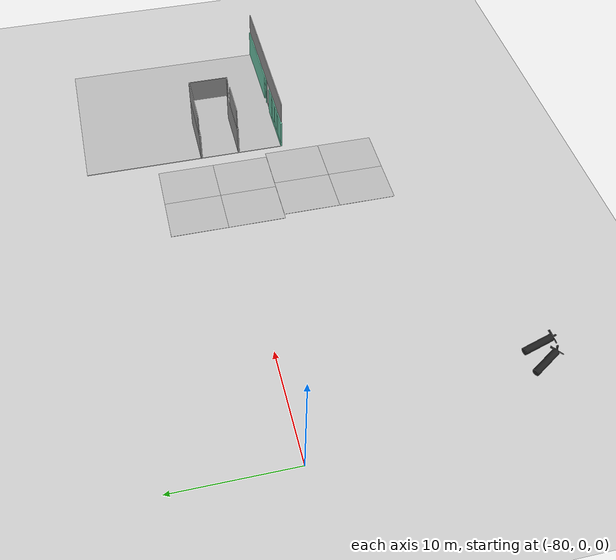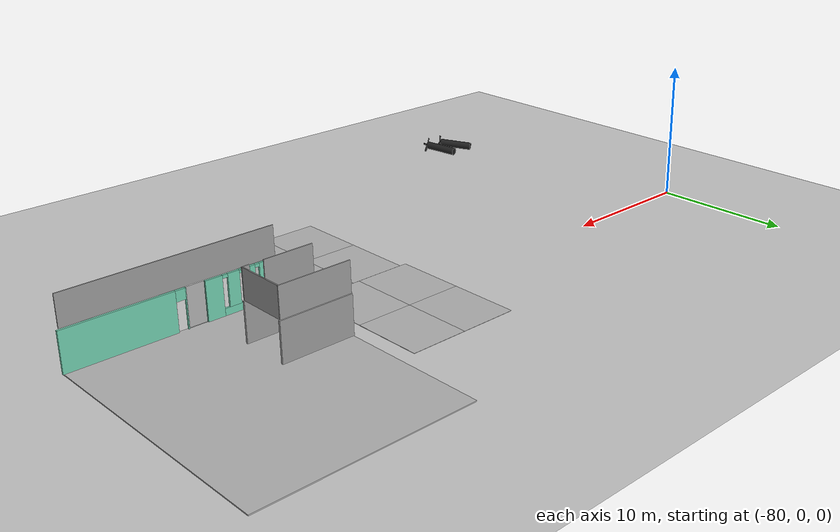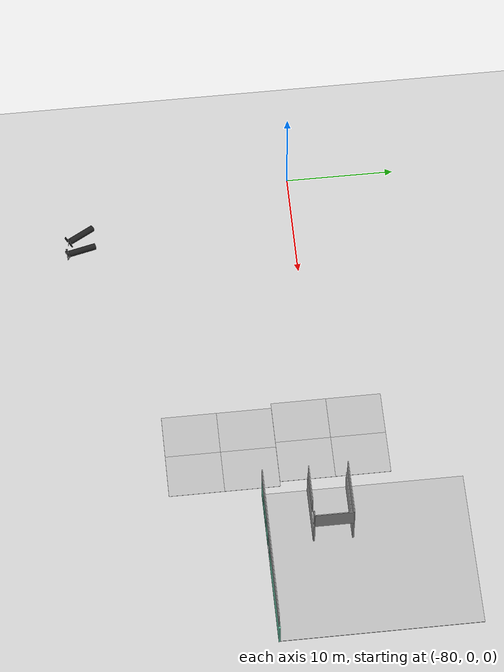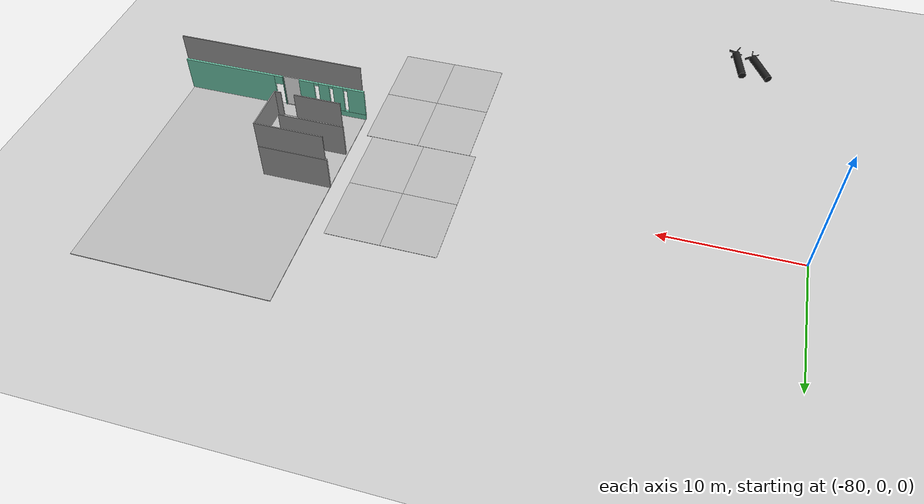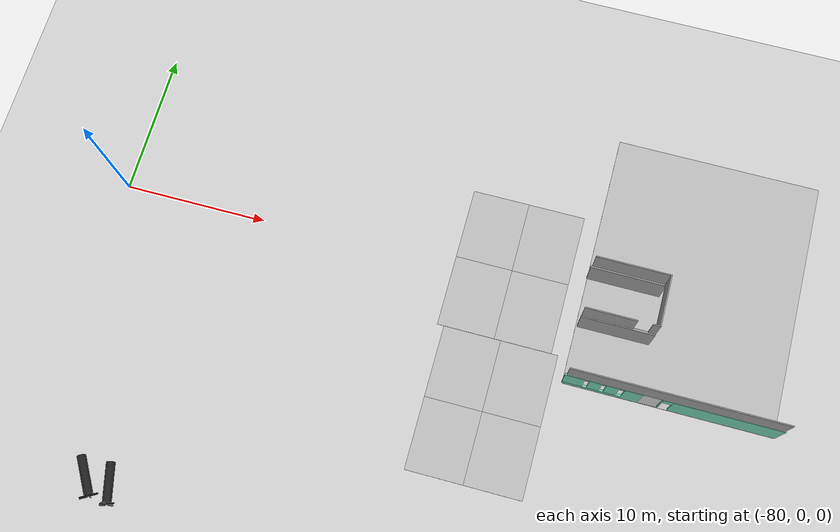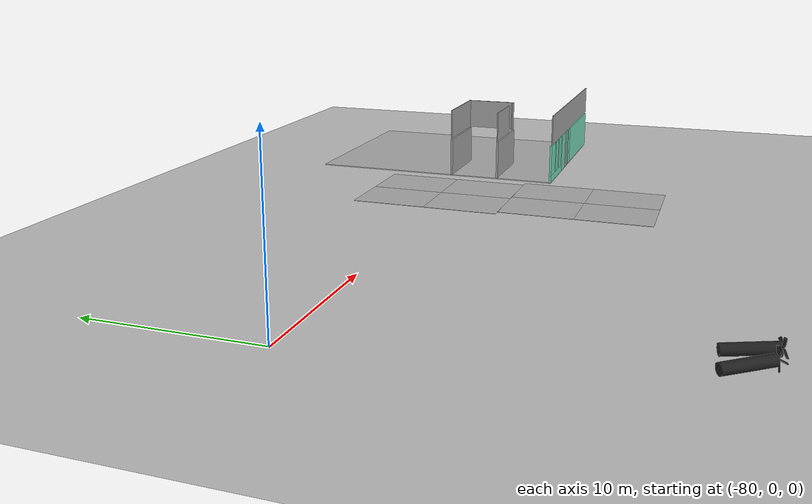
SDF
<sdf version="1.7">
 <world name="default">
  <model name="ground_plane">
   <static>1</static>
   <link name="link">
    <collision name="collision">
     <geometry><plane><normal>0 0 1</normal><size>100 100</size></plane></geometry>
     <surface><friction><ode><mu>100</mu><mu2>50</mu2></ode></friction></surface>
    </collision>
    <visual name="visual">
     <cast_shadows>0</cast_shadows>
     <geometry><plane><normal>0 0 1</normal><size>100 100</size></plane></geometry>
     <material>
      <script><uri>file://media/materials/scripts/gazebo.material</uri><name>Gazebo/Grey</name></script>
     </material>
    </visual>
   </link>
  </model>
  <model name="233333osrf_elevator">
   <link name="Wall_16">
    <pose>-4.68247 -1.4425 0 0 -0 0</pose>
    <visual name="Wall_16_Visual">
     <meta><layer>0</layer></meta>
     <pose>0 0 1.3715 0 -0 0</pose>
     <geometry><box><size>5.12727 0.15 2.743</size></box></geometry>
     <material>
      <script><uri>file://media/materials/scripts/gazebo.material</uri><name>Gazebo/Grey</name></script>
      <ambient>1 1 1 1</ambient>
      <shader type="pixel"/>
     </material>
    </visual>
    <collision name="Wall_16_Collision">
     <pose>0 0 1.3715 0 -0 0</pose>
     <geometry><box><size>5.12727 0.15 2.743</size></box></geometry>
     <surface>
      <friction>
       <ode><mu>1</mu><mu2>1</mu2><fdir1>0 0 0</fdir1><slip1>0</slip1><slip2>0</slip2></ode>
       <torsional>
        <coefficient>1</coefficient>
        <patch_radius>0</patch_radius>
        <surface_radius>0</surface_radius>
        <use_patch_radius>1</use_patch_radius>
        <ode><slip>0</slip></ode>
       </torsional>
      </friction>
      <bounce><restitution_coefficient>0</restitution_coefficient><threshold>1e+06</threshold></bounce>
      <contact>
       <collide_without_contact>0</collide_without_contact>
       <collide_without_contact_bitmask>1</collide_without_contact_bitmask>
       <collide_bitmask>1</collide_bitmask>
       <ode>
        <soft_cfm>0</soft_cfm>
        <soft_erp>0.2</soft_erp>
        <kp>1e+13</kp>
        <kd>1</kd>
        <max_vel>0.01</max_vel>
        <min_depth>0</min_depth>
       </ode>
       <bullet>
        <split_impulse>1</split_impulse>
        <split_impulse_penetration_threshold>-0.01</split_impulse_penetration_threshold>
        <soft_cfm>0</soft_cfm>
        <soft_erp>0.2</soft_erp>
        <kp>1e+13</kp>
        <kd>1</kd>
       </bullet>
      </contact>
     </surface>
    </collision>
   </link>
   <link name="Wall_18">
    <pose>-4.61297 -4.9275 0 0 -0 3.14159</pose>
    <visual name="Wall_18_Visual">
     <meta><layer>0</layer></meta>
     <pose>0 0 1.3715 0 -0 0</pose>
     <geometry><box><size>5 0.15 2.743</size></box></geometry>
     <material>
      <script><uri>file://media/materials/scripts/gazebo.material</uri><name>Gazebo/Grey</name></script>
      <ambient>1 1 1 1</ambient>
      <shader type="pixel"/>
     </material>
    </visual>
    <collision name="Wall_18_Collision">
     <pose>0 0 1.3715 0 -0 0</pose>
     <geometry><box><size>5 0.15 2.743</size></box></geometry>
     <surface>
      <friction>
       <ode><mu>1</mu><mu2>1</mu2><fdir1>0 0 0</fdir1><slip1>0</slip1><slip2>0</slip2></ode>
       <torsional>
        <coefficient>1</coefficient>
        <patch_radius>0</patch_radius>
        <surface_radius>0</surface_radius>
        <use_patch_radius>1</use_patch_radius>
        <ode><slip>0</slip></ode>
       </torsional>
      </friction>
      <bounce><restitution_coefficient>0</restitution_coefficient><threshold>1e+06</threshold></bounce>
      <contact>
       <collide_without_contact>0</collide_without_contact>
       <collide_without_contact_bitmask>1</collide_without_contact_bitmask>
       <collide_bitmask>1</collide_bitmask>
       <ode>
        <soft_cfm>0</soft_cfm>
        <soft_erp>0.2</soft_erp>
        <kp>1e+13</kp>
        <kd>1</kd>
        <max_vel>0.01</max_vel>
        <min_depth>0</min_depth>
       </ode>
       <bullet>
        <split_impulse>1</split_impulse>
        <split_impulse_penetration_threshold>-0.01</split_impulse_penetration_threshold>
        <soft_cfm>0</soft_cfm>
        <soft_erp>0.2</soft_erp>
        <kp>1e+13</kp>
        <kd>1</kd>
       </bullet>
      </contact>
     </surface>
    </collision>
   </link>
   <link name="Wall_6">
    <pose>0.00703 -8.9695 0 0 -0 3.14159</pose>
    <visual name="Wall_6_Visual_0">
     <meta><layer>0</layer></meta>
     <pose>-3.60425 0 1.365 0 -0 0</pose>
     <geometry><box><size>7.2915 0.15 2.73</size></box></geometry>
     <material>
      <script><uri>file://media/materials/scripts/gazebo.material</uri><name>Gazebo/Grey</name></script>
      <ambient>0.435294 0.796078 0.67451 1</ambient>
      <shader type="pixel"/>
     </material>
    </visual>
    <visual name="Wall_6_Visual_1">
     <meta><layer>0</layer></meta>
     <pose>0.726241 0 1.365 0 -0 0</pose>
     <geometry><box><size>0.056893 0.15 2.73</size></box></geometry>
     <material>
      <script><uri>file://media/materials/scripts/gazebo.material</uri><name>Gazebo/Grey</name></script>
      <ambient>0.435294 0.796078 0.67451 1</ambient>
      <shader type="pixel"/>
     </material>
    </visual>
    <visual name="Wall_6_Visual_4">
     <meta><layer>0</layer></meta>
     <pose>5.24871 0 0.25 0 -0 0</pose>
     <geometry><box><size>4.00258 0.15 0.5</size></box></geometry>
     <material>
      <script><uri>file://media/materials/scripts/gazebo.material</uri><name>Gazebo/Grey</name></script>
      <ambient>0.435294 0.796078 0.67451 1</ambient>
      <shader type="pixel"/>
     </material>
    </visual>
    <visual name="Wall_6_Visual_2">
     <meta><layer>0</layer></meta>
     <pose>2.65105 0 1.365 0 -0 0</pose>
     <geometry><box><size>1.19273 0.15 2.73</size></box></geometry>
     <material>
      <script><uri>file://media/materials/scripts/gazebo.material</uri><name>Gazebo/Grey</name></script>
      <ambient>0.435294 0.796078 0.67451 1</ambient>
      <shader type="pixel"/>
     </material>
    </visual>
    <visual name="Wall_6_Visual_5">
     <meta><layer>0</layer></meta>
     <pose>4.0419 0 1.615 0 -0 0</pose>
     <geometry><box><size>0.828969 0.15 2.23</size></box></geometry>
     <material>
      <script><uri>file://media/materials/scripts/gazebo.material</uri><name>Gazebo/Grey</name></script>
      <ambient>0.435294 0.796078 0.67451 1</ambient>
      <shader type="pixel"/>
     </material>
    </visual>
    <visual name="Wall_6_Visual_6">
     <meta><layer>0</layer></meta>
     <pose>5.18099 0 1.615 0 -0 0</pose>
     <geometry><box><size>0.819207 0.15 2.23</size></box></geometry>
     <material>
      <script><uri>file://media/materials/scripts/gazebo.material</uri><name>Gazebo/Grey</name></script>
      <ambient>0.435294 0.796078 0.67451 1</ambient>
      <shader type="pixel"/>
     </material>
    </visual>
    <visual name="Wall_6_Visual_7">
     <meta><layer>0</layer></meta>
     <pose>6.58056 0 1.615 0 -0 0</pose>
     <geometry><box><size>1.33888 0.15 2.23</size></box></geometry>
     <material>
      <script><uri>file://media/materials/scripts/gazebo.material</uri><name>Gazebo/Grey</name></script>
      <ambient>0.435294 0.796078 0.67451 1</ambient>
      <shader type="pixel"/>
     </material>
    </visual>
    <visual name="Wall_6_Visual_8">
     <meta><layer>0</layer></meta>
     <pose>0.369648 0 2.365 0 -0 0</pose>
     <geometry><box><size>0.656294 0.15 0.73</size></box></geometry>
     <material>
      <script><uri>file://media/materials/scripts/gazebo.material</uri><name>Gazebo/Grey</name></script>
      <ambient>0.435294 0.796078 0.67451 1</ambient>
      <shader type="pixel"/>
     </material>
    </visual>
    <visual name="Wall_6_Visual_9">
     <meta><layer>0</layer></meta>
     <pose>3.43742 0 2.615 0 -0 0</pose>
     <geometry><box><size>0.38 0.15 0.23</size></box></geometry>
     <material>
      <script><uri>file://media/materials/scripts/gazebo.material</uri><name>Gazebo/Grey</name></script>
      <ambient>0.435294 0.796078 0.67451 1</ambient>
      <shader type="pixel"/>
     </material>
    </visual>
    <visual name="Wall_6_Visual_10">
     <meta><layer>0</layer></meta>
     <pose>4.61389 0 2.615 0 -0 0</pose>
     <geometry><box><size>0.315 0.15 0.23</size></box></geometry>
     <material>
      <script><uri>file://media/materials/scripts/gazebo.material</uri><name>Gazebo/Grey</name></script>
      <ambient>0.435294 0.796078 0.67451 1</ambient>
      <shader type="pixel"/>
     </material>
    </visual>
    <visual name="Wall_6_Visual_11">
     <meta><layer>0</layer></meta>
     <pose>5.75086 0 2.615 0 -0 0</pose>
     <geometry><box><size>0.320532 0.15 0.23</size></box></geometry>
     <material>
      <script><uri>file://media/materials/scripts/gazebo.material</uri><name>Gazebo/Grey</name></script>
      <ambient>0.435294 0.796078 0.67451 1</ambient>
      <shader type="pixel"/>
     </material>
    </visual>
    <collision name="Wall_6_Collision_0">
     <pose>-3.60425 0 1.365 0 -0 0</pose>
     <geometry><box><size>7.2915 0.15 2.73</size></box></geometry>
     <surface>
      <friction>
       <ode><mu>1</mu><mu2>1</mu2><fdir1>0 0 0</fdir1><slip1>0</slip1><slip2>0</slip2></ode>
       <torsional>
        <coefficient>1</coefficient>
        <patch_radius>0</patch_radius>
        <surface_radius>0</surface_radius>
        <use_patch_radius>1</use_patch_radius>
        <ode><slip>0</slip></ode>
       </torsional>
      </friction>
      <bounce><restitution_coefficient>0</restitution_coefficient><threshold>1e+06</threshold></bounce>
      <contact>
       <collide_without_contact>0</collide_without_contact>
       <collide_without_contact_bitmask>1</collide_without_contact_bitmask>
       <collide_bitmask>1</collide_bitmask>
       <ode>
        <soft_cfm>0</soft_cfm>
        <soft_erp>0.2</soft_erp>
        <kp>1e+13</kp>
        <kd>1</kd>
        <max_vel>0.01</max_vel>
        <min_depth>0</min_depth>
       </ode>
       <bullet>
        <split_impulse>1</split_impulse>
        <split_impulse_penetration_threshold>-0.01</split_impulse_penetration_threshold>
        <soft_cfm>0</soft_cfm>
        <soft_erp>0.2</soft_erp>
        <kp>1e+13</kp>
        <kd>1</kd>
       </bullet>
      </contact>
     </surface>
    </collision>
    <collision name="Wall_6_Collision_1">
     <pose>0.726241 0 1.365 0 -0 0</pose>
     <geometry><box><size>0.056893 0.15 2.73</size></box></geometry>
     <surface>
      <friction>
       <ode><mu>1</mu><mu2>1</mu2><fdir1>0 0 0</fdir1><slip1>0</slip1><slip2>0</slip2></ode>
       <torsional>
        <coefficient>1</coefficient>
        <patch_radius>0</patch_radius>
        <surface_radius>0</surface_radius>
        <use_patch_radius>1</use_patch_radius>
        <ode><slip>0</slip></ode>
       </torsional>
      </friction>
      <bounce><restitution_coefficient>0</restitution_coefficient><threshold>1e+06</threshold></bounce>
      <contact>
       <collide_without_contact>0</collide_without_contact>
       <collide_without_contact_bitmask>1</collide_without_contact_bitmask>
       <collide_bitmask>1</collide_bitmask>
       <ode>
        <soft_cfm>0</soft_cfm>
        <soft_erp>0.2</soft_erp>
        <kp>1e+13</kp>
        <kd>1</kd>
        <max_vel>0.01</max_vel>
        <min_depth>0</min_depth>
       </ode>
       <bullet>
        <split_impulse>1</split_impulse>
        <split_impulse_penetration_threshold>-0.01</split_impulse_penetration_threshold>
        <soft_cfm>0</soft_cfm>
        <soft_erp>0.2</soft_erp>
        <kp>1e+13</kp>
        <kd>1</kd>
       </bullet>
      </contact>
     </surface>
    </collision>
    <collision name="Wall_6_Collision_2">
     <pose>2.65105 0 1.365 0 -0 0</pose>
     <geometry><box><size>1.19273 0.15 2.73</size></box></geometry>
     <surface>
      <friction>
       <ode><mu>1</mu><mu2>1</mu2><fdir1>0 0 0</fdir1><slip1>0</slip1><slip2>0</slip2></ode>
       <torsional>
        <coefficient>1</coefficient>
        <patch_radius>0</patch_radius>
        <surface_radius>0</surface_radius>
        <use_patch_radius>1</use_patch_radius>
        <ode><slip>0</slip></ode>
       </torsional>
      </friction>
      <bounce><restitution_coefficient>0</restitution_coefficient><threshold>1e+06</threshold></bounce>
      <contact>
       <collide_without_contact>0</collide_without_contact>
       <collide_without_contact_bitmask>1</collide_without_contact_bitmask>
       <collide_bitmask>1</collide_bitmask>
       <ode>
        <soft_cfm>0</soft_cfm>
        <soft_erp>0.2</soft_erp>
        <kp>1e+13</kp>
        <kd>1</kd>
        <max_vel>0.01</max_vel>
        <min_depth>0</min_depth>
       </ode>
       <bullet>
        <split_impulse>1</split_impulse>
        <split_impulse_penetration_threshold>-0.01</split_impulse_penetration_threshold>
        <soft_cfm>0</soft_cfm>
        <soft_erp>0.2</soft_erp>
        <kp>1e+13</kp>
        <kd>1</kd>
       </bullet>
      </contact>
     </surface>
    </collision>
    <collision name="Wall_6_Collision_4">
     <pose>5.24871 0 0.25 0 -0 0</pose>
     <geometry><box><size>4.00258 0.15 0.5</size></box></geometry>
     <surface>
      <friction>
       <ode><mu>1</mu><mu2>1</mu2><fdir1>0 0 0</fdir1><slip1>0</slip1><slip2>0</slip2></ode>
       <torsional>
        <coefficient>1</coefficient>
        <patch_radius>0</patch_radius>
        <surface_radius>0</surface_radius>
        <use_patch_radius>1</use_patch_radius>
        <ode><slip>0</slip></ode>
       </torsional>
      </friction>
      <bounce><restitution_coefficient>0</restitution_coefficient><threshold>1e+06</threshold></bounce>
      <contact>
       <collide_without_contact>0</collide_without_contact>
       <collide_without_contact_bitmask>1</collide_without_contact_bitmask>
       <collide_bitmask>1</collide_bitmask>
       <ode>
        <soft_cfm>0</soft_cfm>
        <soft_erp>0.2</soft_erp>
        <kp>1e+13</kp>
        <kd>1</kd>
        <max_vel>0.01</max_vel>
        <min_depth>0</min_depth>
       </ode>
       <bullet>
        <split_impulse>1</split_impulse>
        <split_impulse_penetration_threshold>-0.01</split_impulse_penetration_threshold>
        <soft_cfm>0</soft_cfm>
        <soft_erp>0.2</soft_erp>
        <kp>1e+13</kp>
        <kd>1</kd>
       </bullet>
      </contact>
     </surface>
    </collision>
    <collision name="Wall_6_Collision_5">
     <pose>4.0419 0 1.615 0 -0 0</pose>
     <geometry><box><size>0.828969 0.15 2.23</size></box></geometry>
     <surface>
      <friction>
       <ode><mu>1</mu><mu2>1</mu2><fdir1>0 0 0</fdir1><slip1>0</slip1><slip2>0</slip2></ode>
       <torsional>
        <coefficient>1</coefficient>
        <patch_radius>0</patch_radius>
        <surface_radius>0</surface_radius>
        <use_patch_radius>1</use_patch_radius>
        <ode><slip>0</slip></ode>
       </torsional>
      </friction>
      <bounce><restitution_coefficient>0</restitution_coefficient><threshold>1e+06</threshold></bounce>
      <contact>
       <collide_without_contact>0</collide_without_contact>
       <collide_without_contact_bitmask>1</collide_without_contact_bitmask>
       <collide_bitmask>1</collide_bitmask>
       <ode>
        <soft_cfm>0</soft_cfm>
        <soft_erp>0.2</soft_erp>
        <kp>1e+13</kp>
        <kd>1</kd>
        <max_vel>0.01</max_vel>
        <min_depth>0</min_depth>
       </ode>
       <bullet>
        <split_impulse>1</split_impulse>
        <split_impulse_penetration_threshold>-0.01</split_impulse_penetration_threshold>
        <soft_cfm>0</soft_cfm>
        <soft_erp>0.2</soft_erp>
        <kp>1e+13</kp>
        <kd>1</kd>
       </bullet>
      </contact>
     </surface>
    </collision>
    <collision name="Wall_6_Collision_6">
     <pose>5.18099 0 1.615 0 -0 0</pose>
     <geometry><box><size>0.819207 0.15 2.23</size></box></geometry>
     <surface>
      <friction>
       <ode><mu>1</mu><mu2>1</mu2><fdir1>0 0 0</fdir1><slip1>0</slip1><slip2>0</slip2></ode>
       <torsional>
        <coefficient>1</coefficient>
        <patch_radius>0</patch_radius>
        <surface_radius>0</surface_radius>
        <use_patch_radius>1</use_patch_radius>
        <ode><slip>0</slip></ode>
       </torsional>
      </friction>
      <bounce><restitution_coefficient>0</restitution_coefficient><threshold>1e+06</threshold></bounce>
      <contact>
       <collide_without_contact>0</collide_without_contact>
       <collide_without_contact_bitmask>1</collide_without_contact_bitmask>
       <collide_bitmask>1</collide_bitmask>
       <ode>
        <soft_cfm>0</soft_cfm>
        <soft_erp>0.2</soft_erp>
        <kp>1e+13</kp>
        <kd>1</kd>
        <max_vel>0.01</max_vel>
        <min_depth>0</min_depth>
       </ode>
       <bullet>
        <split_impulse>1</split_impulse>
        <split_impulse_penetration_threshold>-0.01</split_impulse_penetration_threshold>
        <soft_cfm>0</soft_cfm>
        <soft_erp>0.2</soft_erp>
        <kp>1e+13</kp>
        <kd>1</kd>
       </bullet>
      </contact>
     </surface>
    </collision>
    <collision name="Wall_6_Collision_8">
     <pose>0.369648 0 2.365 0 -0 0</pose>
     <geometry><box><size>0.656294 0.15 0.73</size></box></geometry>
     <surface>
      <friction>
       <ode><mu>1</mu><mu2>1</mu2><fdir1>0 0 0</fdir1><slip1>0</slip1><slip2>0</slip2></ode>
       <torsional>
        <coefficient>1</coefficient>
        <patch_radius>0</patch_radius>
        <surface_radius>0</surface_radius>
        <use_patch_radius>1</use_patch_radius>
        <ode><slip>0</slip></ode>
       </torsional>
      </friction>
      <bounce><restitution_coefficient>0</restitution_coefficient><threshold>1e+06</threshold></bounce>
      <contact>
       <collide_without_contact>0</collide_without_contact>
       <collide_without_contact_bitmask>1</collide_without_contact_bitmask>
       <collide_bitmask>1</collide_bitmask>
       <ode>
        <soft_cfm>0</soft_cfm>
        <soft_erp>0.2</soft_erp>
        <kp>1e+13</kp>
        <kd>1</kd>
        <max_vel>0.01</max_vel>
        <min_depth>0</min_depth>
       </ode>
       <bullet>
        <split_impulse>1</split_impulse>
        <split_impulse_penetration_threshold>-0.01</split_impulse_penetration_threshold>
        <soft_cfm>0</soft_cfm>
        <soft_erp>0.2</soft_erp>
        <kp>1e+13</kp>
        <kd>1</kd>
       </bullet>
      </contact>
     </surface>
    </collision>
    <collision name="Wall_6_Collision_7">
     <pose>6.58056 0 1.615 0 -0 0</pose>
     <geometry><box><size>1.33888 0.15 2.23</size></box></geometry>
     <surface>
      <friction>
       <ode><mu>1</mu><mu2>1</mu2><fdir1>0 0 0</fdir1><slip1>0</slip1><slip2>0</slip2></ode>
       <torsional>
        <coefficient>1</coefficient>
        <patch_radius>0</patch_radius>
        <surface_radius>0</surface_radius>
        <use_patch_radius>1</use_patch_radius>
        <ode><slip>0</slip></ode>
       </torsional>
      </friction>
      <bounce><restitution_coefficient>0</restitution_coefficient><threshold>1e+06</threshold></bounce>
      <contact>
       <collide_without_contact>0</collide_without_contact>
       <collide_without_contact_bitmask>1</collide_without_contact_bitmask>
       <collide_bitmask>1</collide_bitmask>
       <ode>
        <soft_cfm>0</soft_cfm>
        <soft_erp>0.2</soft_erp>
        <kp>1e+13</kp>
        <kd>1</kd>
        <max_vel>0.01</max_vel>
        <min_depth>0</min_depth>
       </ode>
       <bullet>
        <split_impulse>1</split_impulse>
        <split_impulse_penetration_threshold>-0.01</split_impulse_penetration_threshold>
        <soft_cfm>0</soft_cfm>
        <soft_erp>0.2</soft_erp>
        <kp>1e+13</kp>
        <kd>1</kd>
       </bullet>
      </contact>
     </surface>
    </collision>
    <collision name="Wall_6_Collision_9">
     <pose>3.43742 0 2.615 0 -0 0</pose>
     <geometry><box><size>0.38 0.15 0.23</size></box></geometry>
     <surface>
      <friction>
       <ode><mu>1</mu><mu2>1</mu2><fdir1>0 0 0</fdir1><slip1>0</slip1><slip2>0</slip2></ode>
       <torsional>
        <coefficient>1</coefficient>
        <patch_radius>0</patch_radius>
        <surface_radius>0</surface_radius>
        <use_patch_radius>1</use_patch_radius>
        <ode><slip>0</slip></ode>
       </torsional>
      </friction>
      <bounce><restitution_coefficient>0</restitution_coefficient><threshold>1e+06</threshold></bounce>
      <contact>
       <collide_without_contact>0</collide_without_contact>
       <collide_without_contact_bitmask>1</collide_without_contact_bitmask>
       <collide_bitmask>1</collide_bitmask>
       <ode>
        <soft_cfm>0</soft_cfm>
        <soft_erp>0.2</soft_erp>
        <kp>1e+13</kp>
        <kd>1</kd>
        <max_vel>0.01</max_vel>
        <min_depth>0</min_depth>
       </ode>
       <bullet>
        <split_impulse>1</split_impulse>
        <split_impulse_penetration_threshold>-0.01</split_impulse_penetration_threshold>
        <soft_cfm>0</soft_cfm>
        <soft_erp>0.2</soft_erp>
        <kp>1e+13</kp>
        <kd>1</kd>
       </bullet>
      </contact>
     </surface>
    </collision>
    <collision name="Wall_6_Collision_10">
     <pose>4.61389 0 2.615 0 -0 0</pose>
     <geometry><box><size>0.315 0.15 0.23</size></box></geometry>
     <surface>
      <friction>
       <ode><mu>1</mu><mu2>1</mu2><fdir1>0 0 0</fdir1><slip1>0</slip1><slip2>0</slip2></ode>
       <torsional>
        <coefficient>1</coefficient>
        <patch_radius>0</patch_radius>
        <surface_radius>0</surface_radius>
        <use_patch_radius>1</use_patch_radius>
        <ode><slip>0</slip></ode>
       </torsional>
      </friction>
      <bounce><restitution_coefficient>0</restitution_coefficient><threshold>1e+06</threshold></bounce>
      <contact>
       <collide_without_contact>0</collide_without_contact>
       <collide_without_contact_bitmask>1</collide_without_contact_bitmask>
       <collide_bitmask>1</collide_bitmask>
       <ode>
        <soft_cfm>0</soft_cfm>
        <soft_erp>0.2</soft_erp>
        <kp>1e+13</kp>
        <kd>1</kd>
        <max_vel>0.01</max_vel>
        <min_depth>0</min_depth>
       </ode>
       <bullet>
        <split_impulse>1</split_impulse>
        <split_impulse_penetration_threshold>-0.01</split_impulse_penetration_threshold>
        <soft_cfm>0</soft_cfm>
        <soft_erp>0.2</soft_erp>
        <kp>1e+13</kp>
        <kd>1</kd>
       </bullet>
      </contact>
     </surface>
    </collision>
    <collision name="Wall_6_Collision_11">
     <pose>5.75086 0 2.615 0 -0 0</pose>
     <geometry><box><size>0.320532 0.15 0.23</size></box></geometry>
     <surface>
      <friction>
       <ode><mu>1</mu><mu2>1</mu2><fdir1>0 0 0</fdir1><slip1>0</slip1><slip2>0</slip2></ode>
       <torsional>
        <coefficient>1</coefficient>
        <patch_radius>0</patch_radius>
        <surface_radius>0</surface_radius>
        <use_patch_radius>1</use_patch_radius>
        <ode><slip>0</slip></ode>
       </torsional>
      </friction>
      <bounce><restitution_coefficient>0</restitution_coefficient><threshold>1e+06</threshold></bounce>
      <contact>
       <collide_without_contact>0</collide_without_contact>
       <collide_without_contact_bitmask>1</collide_without_contact_bitmask>
       <collide_bitmask>1</collide_bitmask>
       <ode>
        <soft_cfm>0</soft_cfm>
        <soft_erp>0.2</soft_erp>
        <kp>1e+13</kp>
        <kd>1</kd>
        <max_vel>0.01</max_vel>
        <min_depth>0</min_depth>
       </ode>
       <bullet>
        <split_impulse>1</split_impulse>
        <split_impulse_penetration_threshold>-0.01</split_impulse_penetration_threshold>
        <soft_cfm>0</soft_cfm>
        <soft_erp>0.2</soft_erp>
        <kp>1e+13</kp>
        <kd>1</kd>
       </bullet>
      </contact>
     </surface>
    </collision>
   </link>
   <link name="floor1_part10">
    <pose>-2.39225 -4.89435 3.85794 1.5708 -0 0</pose>
    <visual name="visual">
     <meta><layer>1</layer></meta>
     <geometry><box><size>0.519866 2.0998 0.078</size></box></geometry>
     <material><script><name>Gazebo/Grey</name><uri>__default__</uri></script><shader type="pixel"/></material>
    </visual>
    <collision name="collision">
     <geometry><box><size>0.519866 2.0998 0.078</size></box></geometry>
     <surface>
      <friction>
       <ode><mu>1</mu><mu2>1</mu2><fdir1>0 0 0</fdir1><slip1>0</slip1><slip2>0</slip2></ode>
       <torsional>
        <coefficient>1</coefficient>
        <patch_radius>0</patch_radius>
        <surface_radius>0</surface_radius>
        <use_patch_radius>1</use_patch_radius>
        <ode><slip>0</slip></ode>
       </torsional>
      </friction>
      <bounce><restitution_coefficient>0</restitution_coefficient><threshold>1e+06</threshold></bounce>
      <contact>
       <collide_without_contact>0</collide_without_contact>
       <collide_without_contact_bitmask>1</collide_without_contact_bitmask>
       <collide_bitmask>1</collide_bitmask>
       <ode>
        <soft_cfm>0</soft_cfm>
        <soft_erp>0.2</soft_erp>
        <kp>1e+13</kp>
        <kd>1</kd>
        <max_vel>0.01</max_vel>
        <min_depth>0</min_depth>
       </ode>
       <bullet>
        <split_impulse>1</split_impulse>
        <split_impulse_penetration_threshold>-0.01</split_impulse_penetration_threshold>
        <soft_cfm>0</soft_cfm>
        <soft_erp>0.2</soft_erp>
        <kp>1e+13</kp>
        <kd>1</kd>
       </bullet>
      </contact>
     </surface>
    </collision>
   </link>
   <link name="floor1_part11">
    <pose>-2.17305 -3.18058 3.85794 1.5708 0 -1.5708</pose>
    <visual name="visual">
     <meta><layer>1</layer></meta>
     <geometry><box><size>3.4917 2.0998 0.078</size></box></geometry>
     <material><script><name>Gazebo/Grey</name><uri>__default__</uri></script><shader type="pixel"/></material>
    </visual>
    <collision name="collision">
     <geometry><box><size>3.4917 2.0998 0.078</size></box></geometry>
     <surface>
      <friction>
       <ode><mu>1</mu><mu2>1</mu2><fdir1>0 0 0</fdir1><slip1>0</slip1><slip2>0</slip2></ode>
       <torsional>
        <coefficient>1</coefficient>
        <patch_radius>0</patch_radius>
        <surface_radius>0</surface_radius>
        <use_patch_radius>1</use_patch_radius>
        <ode><slip>0</slip></ode>
       </torsional>
      </friction>
      <bounce><restitution_coefficient>0</restitution_coefficient><threshold>1e+06</threshold></bounce>
      <contact>
       <collide_without_contact>0</collide_without_contact>
       <collide_without_contact_bitmask>1</collide_without_contact_bitmask>
       <collide_bitmask>1</collide_bitmask>
       <ode>
        <soft_cfm>0</soft_cfm>
        <soft_erp>0.2</soft_erp>
        <kp>1e+13</kp>
        <kd>1</kd>
        <max_vel>0.01</max_vel>
        <min_depth>0</min_depth>
       </ode>
       <bullet>
        <split_impulse>1</split_impulse>
        <split_impulse_penetration_threshold>-0.01</split_impulse_penetration_threshold>
        <soft_cfm>0</soft_cfm>
        <soft_erp>0.2</soft_erp>
        <kp>1e+13</kp>
        <kd>1</kd>
       </bullet>
      </contact>
     </surface>
    </collision>
   </link>
   <link name="floor1_part5">
    <pose>-4.65046 -1.39728 3.85794 1.5708 -0 0</pose>
    <visual name="visual">
     <meta><layer>1</layer></meta>
     <geometry><box><size>5.03711 2.0998 0.078</size></box></geometry>
     <material><script><name>Gazebo/Grey</name><uri>__default__</uri></script><shader type="pixel"/></material>
    </visual>
    <collision name="collision">
     <geometry><box><size>5.03711 2.0998 0.078</size></box></geometry>
     <surface>
      <friction>
       <ode><mu>1</mu><mu2>1</mu2><fdir1>0 0 0</fdir1><slip1>0</slip1><slip2>0</slip2></ode>
       <torsional>
        <coefficient>1</coefficient>
        <patch_radius>0</patch_radius>
        <surface_radius>0</surface_radius>
        <use_patch_radius>1</use_patch_radius>
        <ode><slip>0</slip></ode>
       </torsional>
      </friction>
      <bounce><restitution_coefficient>0</restitution_coefficient><threshold>1e+06</threshold></bounce>
      <contact>
       <collide_without_contact>0</collide_without_contact>
       <collide_without_contact_bitmask>1</collide_without_contact_bitmask>
       <collide_bitmask>1</collide_bitmask>
       <ode>
        <soft_cfm>0</soft_cfm>
        <soft_erp>0.2</soft_erp>
        <kp>1e+13</kp>
        <kd>1</kd>
        <max_vel>0.01</max_vel>
        <min_depth>0</min_depth>
       </ode>
       <bullet>
        <split_impulse>1</split_impulse>
        <split_impulse_penetration_threshold>-0.01</split_impulse_penetration_threshold>
        <soft_cfm>0</soft_cfm>
        <soft_erp>0.2</soft_erp>
        <kp>1e+13</kp>
        <kd>1</kd>
       </bullet>
      </contact>
     </surface>
    </collision>
   </link>
   <link name="floor1_part8">
    <pose>0 -9 3.86461 1.5708 -0 0</pose>
    <visual name="visual">
     <meta><layer>1</layer></meta>
     <geometry><box><size>14.2592 2.0998 0.078</size></box></geometry>
     <material><script><name>Gazebo/Grey</name><uri>__default__</uri></script><shader type="pixel"/></material>
    </visual>
    <collision name="collision">
     <geometry><box><size>14.2592 2.0998 0.078</size></box></geometry>
     <surface>
      <friction>
       <ode><mu>1</mu><mu2>1</mu2><fdir1>0 0 0</fdir1><slip1>0</slip1><slip2>0</slip2></ode>
       <torsional>
        <coefficient>1</coefficient>
        <patch_radius>0</patch_radius>
        <surface_radius>0</surface_radius>
        <use_patch_radius>1</use_patch_radius>
        <ode><slip>0</slip></ode>
       </torsional>
      </friction>
      <bounce><restitution_coefficient>0</restitution_coefficient><threshold>1e+06</threshold></bounce>
      <contact>
       <collide_without_contact>0</collide_without_contact>
       <collide_without_contact_bitmask>1</collide_without_contact_bitmask>
       <collide_bitmask>1</collide_bitmask>
       <ode>
        <soft_cfm>0</soft_cfm>
        <soft_erp>0.2</soft_erp>
        <kp>1e+13</kp>
        <kd>1</kd>
        <max_vel>0.01</max_vel>
        <min_depth>0</min_depth>
       </ode>
       <bullet>
        <split_impulse>1</split_impulse>
        <split_impulse_penetration_threshold>-0.01</split_impulse_penetration_threshold>
        <soft_cfm>0</soft_cfm>
        <soft_erp>0.2</soft_erp>
        <kp>1e+13</kp>
        <kd>1</kd>
       </bullet>
      </contact>
     </surface>
    </collision>
   </link>
   <link name="floor1_part9">
    <pose>-5.36806 -4.90906 3.85794 1.5708 -0 0</pose>
    <visual name="visual">
     <meta><layer>1</layer></meta>
     <geometry><box><size>3.47446 2.0998 0.078</size></box></geometry>
     <material><script><name>Gazebo/Grey</name><uri>__default__</uri></script><shader type="pixel"/></material>
    </visual>
    <collision name="collision">
     <geometry><box><size>3.47446 2.0998 0.078</size></box></geometry>
     <surface>
      <friction>
       <ode><mu>1</mu><mu2>1</mu2><fdir1>0 0 0</fdir1><slip1>0</slip1><slip2>0</slip2></ode>
       <torsional>
        <coefficient>1</coefficient>
        <patch_radius>0</patch_radius>
        <surface_radius>0</surface_radius>
        <use_patch_radius>1</use_patch_radius>
        <ode><slip>0</slip></ode>
       </torsional>
      </friction>
      <bounce><restitution_coefficient>0</restitution_coefficient><threshold>1e+06</threshold></bounce>
      <contact>
       <collide_without_contact>0</collide_without_contact>
       <collide_without_contact_bitmask>1</collide_without_contact_bitmask>
       <collide_bitmask>1</collide_bitmask>
       <ode>
        <soft_cfm>0</soft_cfm>
        <soft_erp>0.2</soft_erp>
        <kp>1e+13</kp>
        <kd>1</kd>
        <max_vel>0.01</max_vel>
        <min_depth>0</min_depth>
       </ode>
       <bullet>
        <split_impulse>1</split_impulse>
        <split_impulse_penetration_threshold>-0.01</split_impulse_penetration_threshold>
        <soft_cfm>0</soft_cfm>
        <soft_erp>0.2</soft_erp>
        <kp>1e+13</kp>
        <kd>1</kd>
       </bullet>
      </contact>
     </surface>
    </collision>
   </link>
   <link name="front_window">
    <pose>-1.42369 -8.99808 1.36421 0 -0 0</pose>
    <visual name="front_window_visual">
     <meta><layer>0</layer></meta>
     <geometry><box><size>1.37422 0.034702 2.72768</size></box></geometry>
     <material>
      <script><name>Gazebo/GreyTransparent</name><uri>__default__</uri></script>
      <shader type="pixel"/>
     </material>
    </visual>
    <collision name="front_window_collision">
     <geometry><box><size>1.37422 0.034702 2.72768</size></box></geometry>
     <surface>
      <friction>
       <ode><mu>1</mu><mu2>1</mu2><fdir1>0 0 0</fdir1><slip1>0</slip1><slip2>0</slip2></ode>
       <torsional>
        <coefficient>1</coefficient>
        <patch_radius>0</patch_radius>
        <surface_radius>0</surface_radius>
        <use_patch_radius>1</use_patch_radius>
        <ode><slip>0</slip></ode>
       </torsional>
      </friction>
      <bounce><restitution_coefficient>0</restitution_coefficient><threshold>1e+06</threshold></bounce>
      <contact>
       <collide_without_contact>0</collide_without_contact>
       <collide_without_contact_bitmask>1</collide_without_contact_bitmask>
       <collide_bitmask>1</collide_bitmask>
       <ode>
        <soft_cfm>0</soft_cfm>
        <soft_erp>0.2</soft_erp>
        <kp>1e+13</kp>
        <kd>1</kd>
        <max_vel>0.01</max_vel>
        <min_depth>0</min_depth>
       </ode>
       <bullet>
        <split_impulse>1</split_impulse>
        <split_impulse_penetration_threshold>-0.01</split_impulse_penetration_threshold>
        <soft_cfm>0</soft_cfm>
        <soft_erp>0.2</soft_erp>
        <kp>1e+13</kp>
        <kd>1</kd>
       </bullet>
      </contact>
     </surface>
    </collision>
   </link>
   <link name="ground_floor">
    <pose>0 0 -0.062833 0 -0 0</pose>
    <visual name="visual">
     <geometry><box><size>14.4 18.1 0.15</size></box></geometry>
     <material><shader type="pixel"/></material>
    </visual>
    <collision name="collision">
     <geometry><box><size>14.4 18.1 0.15</size></box></geometry>
     <surface>
      <friction>
       <ode><mu>1</mu><mu2>1</mu2><fdir1>0 0 0</fdir1><slip1>0</slip1><slip2>0</slip2></ode>
       <torsional>
        <coefficient>1</coefficient>
        <patch_radius>0</patch_radius>
        <surface_radius>0</surface_radius>
        <use_patch_radius>1</use_patch_radius>
        <ode><slip>0</slip></ode>
       </torsional>
      </friction>
      <bounce><restitution_coefficient>0</restitution_coefficient><threshold>1e+06</threshold></bounce>
      <contact>
       <collide_without_contact>0</collide_without_contact>
       <collide_without_contact_bitmask>1</collide_without_contact_bitmask>
       <collide_bitmask>1</collide_bitmask>
       <ode>
        <soft_cfm>0</soft_cfm>
        <soft_erp>0.2</soft_erp>
        <kp>1e+13</kp>
        <kd>1</kd>
        <max_vel>0.01</max_vel>
        <min_depth>0</min_depth>
       </ode>
       <bullet>
        <split_impulse>1</split_impulse>
        <split_impulse_penetration_threshold>-0.01</split_impulse_penetration_threshold>
        <soft_cfm>0</soft_cfm>
        <soft_erp>0.2</soft_erp>
        <kp>1e+13</kp>
        <kd>1</kd>
       </bullet>
      </contact>
     </surface>
    </collision>
   </link>
   <static>1</static>
   <pose>-39.9417 3.24072 0 0 -0 0</pose>
  </model>
  <model name="mud_box1111">
   <link name="link">
    <pose>0 0 -0.129582 0 -0 0</pose>
    <visual name="visual_1">
     <pose>-2 2.5 0 0 -0 0</pose>
     <cast_shadows>0</cast_shadows>
     <geometry><box><size>4 5 0.2</size></box></geometry>
     <material>
      <script>
       <uri>model://mud_box/materials/scripts</uri>
       <uri>model://mud_box/materials/textures</uri>
       <name>vrc/mud</name>
      </script>
      <shader type="pixel"/>
     </material>
    </visual>
    <visual name="visual_4">
     <pose>-2 -2.5 0 0 -0 0</pose>
     <cast_shadows>0</cast_shadows>
     <geometry><box><size>4 5 0.2</size></box></geometry>
     <material>
      <script>
       <uri>model://mud_box/materials/scripts</uri>
       <uri>model://mud_box/materials/textures</uri>
       <name>vrc/mud</name>
      </script>
      <shader type="pixel"/>
     </material>
    </visual>
    <visual name="visual_3">
     <pose>2 -2.5 0 0 -0 0</pose>
     <cast_shadows>0</cast_shadows>
     <geometry><box><size>4 5 0.2</size></box></geometry>
     <material>
      <script>
       <uri>model://mud_box/materials/scripts</uri>
       <uri>model://mud_box/materials/textures</uri>
       <name>vrc/mud</name>
      </script>
      <shader type="pixel"/>
     </material>
    </visual>
    <visual name="visual_2">
     <pose>2 2.5 0 0 -0 0</pose>
     <cast_shadows>0</cast_shadows>
     <geometry><box><size>4 5 0.2</size></box></geometry>
     <material>
      <script>
       <uri>model://mud_box/materials/scripts</uri>
       <uri>model://mud_box/materials/textures</uri>
       <name>vrc/mud</name>
      </script>
      <shader type="pixel"/>
     </material>
    </visual>
    <collision name="collision">
     <geometry><box><size>8 10 0.2</size></box></geometry>
     <surface>
      <friction>
       <ode><mu>1</mu><mu2>1</mu2><fdir1>0 0 0</fdir1><slip1>0</slip1><slip2>0</slip2></ode>
       <torsional>
        <coefficient>1</coefficient>
        <patch_radius>0</patch_radius>
        <surface_radius>0</surface_radius>
        <use_patch_radius>1</use_patch_radius>
        <ode><slip>0</slip></ode>
       </torsional>
      </friction>
      <bounce><restitution_coefficient>0</restitution_coefficient><threshold>1e+06</threshold></bounce>
      <contact>
       <collide_without_contact>0</collide_without_contact>
       <collide_without_contact_bitmask>1</collide_without_contact_bitmask>
       <collide_bitmask>1</collide_bitmask>
       <ode>
        <soft_cfm>0</soft_cfm>
        <soft_erp>0.2</soft_erp>
        <kp>1e+13</kp>
        <kd>1</kd>
        <max_vel>0.01</max_vel>
        <min_depth>0</min_depth>
       </ode>
       <bullet>
        <split_impulse>1</split_impulse>
        <split_impulse_penetration_threshold>-0.01</split_impulse_penetration_threshold>
        <soft_cfm>0</soft_cfm>
        <soft_erp>0.2</soft_erp>
        <kp>1e+13</kp>
        <kd>1</kd>
       </bullet>
      </contact>
     </surface>
    </collision>
   </link>
   <static>1</static>
   <pose>-51.8236 -9.04248 0 0 -0 0</pose>
  </model>
  <model name="mud_box1111_0">
   <link name="link">
    <pose>0 0 -0.129582 0 -0 0</pose>
    <visual name="visual_1">
     <pose>-2 2.5 0 0 -0 0</pose>
     <cast_shadows>0</cast_shadows>
     <geometry><box><size>4 5 0.2</size></box></geometry>
     <material>
      <script>
       <uri>model://mud_box/materials/scripts</uri>
       <uri>model://mud_box/materials/textures</uri>
       <name>vrc/mud</name>
      </script>
      <shader type="pixel"/>
     </material>
    </visual>
    <visual name="visual_4">
     <pose>-2 -2.5 0 0 -0 0</pose>
     <cast_shadows>0</cast_shadows>
     <geometry><box><size>4 5 0.2</size></box></geometry>
     <material>
      <script>
       <uri>model://mud_box/materials/scripts</uri>
       <uri>model://mud_box/materials/textures</uri>
       <name>vrc/mud</name>
      </script>
      <shader type="pixel"/>
     </material>
    </visual>
    <visual name="visual_3">
     <pose>2 -2.5 0 0 -0 0</pose>
     <cast_shadows>0</cast_shadows>
     <geometry><box><size>4 5 0.2</size></box></geometry>
     <material>
      <script>
       <uri>model://mud_box/materials/scripts</uri>
       <uri>model://mud_box/materials/textures</uri>
       <name>vrc/mud</name>
      </script>
      <shader type="pixel"/>
     </material>
    </visual>
    <visual name="visual_2">
     <pose>2 2.5 0 0 -0 0</pose>
     <cast_shadows>0</cast_shadows>
     <geometry><box><size>4 5 0.2</size></box></geometry>
     <material>
      <script>
       <uri>model://mud_box/materials/scripts</uri>
       <uri>model://mud_box/materials/textures</uri>
       <name>vrc/mud</name>
      </script>
      <shader type="pixel"/>
     </material>
    </visual>
    <collision name="collision">
     <geometry><box><size>8 10 0.2</size></box></geometry>
     <surface>
      <friction>
       <ode><mu>1</mu><mu2>1</mu2><fdir1>0 0 0</fdir1><slip1>0</slip1><slip2>0</slip2></ode>
       <torsional>
        <coefficient>1</coefficient>
        <patch_radius>0</patch_radius>
        <surface_radius>0</surface_radius>
        <use_patch_radius>1</use_patch_radius>
        <ode><slip>0</slip></ode>
       </torsional>
      </friction>
      <bounce><restitution_coefficient>0</restitution_coefficient><threshold>1e+06</threshold></bounce>
      <contact>
       <collide_without_contact>0</collide_without_contact>
       <collide_without_contact_bitmask>1</collide_without_contact_bitmask>
       <collide_bitmask>1</collide_bitmask>
       <ode>
        <soft_cfm>0</soft_cfm>
        <soft_erp>0.2</soft_erp>
        <kp>1e+13</kp>
        <kd>1</kd>
        <max_vel>0.01</max_vel>
        <min_depth>0</min_depth>
       </ode>
       <bullet>
        <split_impulse>1</split_impulse>
        <split_impulse_penetration_threshold>-0.01</split_impulse_penetration_threshold>
        <soft_cfm>0</soft_cfm>
        <soft_erp>0.2</soft_erp>
        <kp>1e+13</kp>
        <kd>1</kd>
       </bullet>
      </contact>
     </surface>
    </collision>
   </link>
   <static>1</static>
   <pose>-52.2906 0.966684 0 0 -0 0</pose>
  </model>
  <model name="submarine_sinking_0_clone_8">
   <pose>-75.2146 -20.6829 0.459063 1.50727 0.135514 0.548</pose>
   <link name="body">
    <pose>0 0 -1.07935 0 -0 0</pose>
    <inertial>
     <mass>1102.7</mass>
     <inertia><ixx>645.998</ixx><ixy>0</ixy><ixz>0</ixz><iyy>645.998</iyy><iyz>0</iyz><izz>49.6215</izz></inertia>
    </inertial>
    <visual name="body_visual">
     <geometry><cylinder><radius>0.3</radius><length>2.6</length></cylinder></geometry>
     <material>
      <script><uri>file://media/materials/scripts/gazebo.material</uri><name>Gazebo/Black</name></script>
     </material>
    </visual>
    <collision name="body_collision">
     <geometry><cylinder><radius>0.3</radius><length>2.6</length></cylinder></geometry>
    </collision>
    <visual name="spacer_visual">
     <pose>0 0 1.37855 0 -0 0</pose>
     <geometry><cylinder><radius>0.0933402</radius><length>0.127211</length></cylinder></geometry>
     <material>
      <script><uri>file://media/materials/scripts/gazebo.material</uri><name>Gazebo/Black</name></script>
     </material>
    </visual>
   </link>
   <link name="propeller">
    <pose>0 0 0.3455 3.14159 -0 0</pose>
    <inertial>
     <mass>25.2312</mass>
     <inertia><ixx>0.531907</ixx><ixy>0</ixy><ixz>0</ixz><iyy>0.531907</iyy><iyz>0</iyz><izz>1.0513</izz></inertia>
    </inertial>
    <visual name="blade1_visual">
     <pose>0.34334 0 0 0.785398 -0 0</pose>
     <geometry><box><size>0.5 0.154178 0.05455</size></box></geometry>
     <material>
      <script><uri>file://media/materials/scripts/gazebo.material</uri><name>Gazebo/Black</name></script>
     </material>
    </visual>
    <collision name="blade1_collision">
     <pose>0.34334 0 0 0.785398 -0 0</pose>
     <geometry><box><size>0.5 0.154178 0.05455</size></box></geometry>
    </collision>
    <visual name="blade2_visual">
     <pose>0 0.34334 0 0.785398 0 1.5708</pose>
     <geometry><box><size>0.5 0.154178 0.05455</size></box></geometry>
     <material>
      <script><uri>file://media/materials/scripts/gazebo.material</uri><name>Gazebo/Black</name></script>
     </material>
    </visual>
    <collision name="blade2_collision">
     <pose>0 0.34334 0 0.785398 0 1.5708</pose>
     <geometry><box><size>0.5 0.154178 0.05455</size></box></geometry>
    </collision>
    <visual name="blade3_visual">
     <pose>-0.34334 -0 0 -0.785398 0 0</pose>
     <geometry><box><size>0.5 0.154178 0.05455</size></box></geometry>
     <material>
      <script><uri>file://media/materials/scripts/gazebo.material</uri><name>Gazebo/Black</name></script>
     </material>
    </visual>
    <collision name="blade3_collision">
     <pose>-0.34334 -0 0 -0.785398 0 0</pose>
     <geometry><box><size>0.5 0.154178 0.05455</size></box></geometry>
    </collision>
    <visual name="blade4_visual">
     <pose>-0 -0.34334 0 -0.785398 -0 1.5708</pose>
     <geometry><box><size>0.5 0.154178 0.05455</size></box></geometry>
     <material>
      <script><uri>file://media/materials/scripts/gazebo.material</uri><name>Gazebo/Black</name></script>
     </material>
    </visual>
    <collision name="blade4_collision">
     <pose>-0 -0.34334 0 -0.785398 -0 1.5708</pose>
     <geometry><box><size>0.5 0.154178 0.05455</size></box></geometry>
    </collision>
   </link>
   <joint name="spinning_joint" type="revolute">
    <parent>body</parent>
    <child>propeller</child>
    <axis>
     <xyz expressed_in="__model__">0 0 1</xyz>
     <limit><lower>-1e+12</lower><upper>1e+12</upper><effort>-1</effort><velocity>-1</velocity></limit>
     <dynamics><spring_reference>0</spring_reference><spring_stiffness>0</spring_stiffness></dynamics>
    </axis>
   </joint>
   <plugin name="buoyancy" filename="libBuoyancyPlugin.so"><fluid_density>999.1026</fluid_density></plugin>
  </model>
  <model name="submarine_sinking_0_clone_9">
   <pose>-73.8215 -20.8559 0.459061 1.50179 -0.422335 0.298059</pose>
   <link name="body">
    <pose>0 0 -1.07935 0 -0 0</pose>
    <inertial>
     <mass>1102.7</mass>
     <inertia><ixx>645.998</ixx><ixy>0</ixy><ixz>0</ixz><iyy>645.998</iyy><iyz>0</iyz><izz>49.6215</izz></inertia>
    </inertial>
    <visual name="body_visual">
     <geometry><cylinder><radius>0.3</radius><length>2.6</length></cylinder></geometry>
     <material>
      <script><uri>file://media/materials/scripts/gazebo.material</uri><name>Gazebo/Black</name></script>
     </material>
    </visual>
    <collision name="body_collision">
     <geometry><cylinder><radius>0.3</radius><length>2.6</length></cylinder></geometry>
    </collision>
    <visual name="spacer_visual">
     <pose>0 0 1.37855 0 -0 0</pose>
     <geometry><cylinder><radius>0.0933402</radius><length>0.127211</length></cylinder></geometry>
     <material>
      <script><uri>file://media/materials/scripts/gazebo.material</uri><name>Gazebo/Black</name></script>
     </material>
    </visual>
   </link>
   <link name="propeller">
    <pose>0 0 0.3455 3.14159 -0 0</pose>
    <inertial>
     <mass>25.2312</mass>
     <inertia><ixx>0.531907</ixx><ixy>0</ixy><ixz>0</ixz><iyy>0.531907</iyy><iyz>0</iyz><izz>1.0513</izz></inertia>
    </inertial>
    <visual name="blade1_visual">
     <pose>0.34334 0 0 0.785398 -0 0</pose>
     <geometry><box><size>0.5 0.154178 0.05455</size></box></geometry>
     <material>
      <script><uri>file://media/materials/scripts/gazebo.material</uri><name>Gazebo/Black</name></script>
     </material>
    </visual>
    <collision name="blade1_collision">
     <pose>0.34334 0 0 0.785398 -0 0</pose>
     <geometry><box><size>0.5 0.154178 0.05455</size></box></geometry>
    </collision>
    <visual name="blade2_visual">
     <pose>0 0.34334 0 0.785398 0 1.5708</pose>
     <geometry><box><size>0.5 0.154178 0.05455</size></box></geometry>
     <material>
      <script><uri>file://media/materials/scripts/gazebo.material</uri><name>Gazebo/Black</name></script>
     </material>
    </visual>
    <collision name="blade2_collision">
     <pose>0 0.34334 0 0.785398 0 1.5708</pose>
     <geometry><box><size>0.5 0.154178 0.05455</size></box></geometry>
    </collision>
    <visual name="blade3_visual">
     <pose>-0.34334 -0 0 -0.785398 0 0</pose>
     <geometry><box><size>0.5 0.154178 0.05455</size></box></geometry>
     <material>
      <script><uri>file://media/materials/scripts/gazebo.material</uri><name>Gazebo/Black</name></script>
     </material>
    </visual>
    <collision name="blade3_collision">
     <pose>-0.34334 -0 0 -0.785398 0 0</pose>
     <geometry><box><size>0.5 0.154178 0.05455</size></box></geometry>
    </collision>
    <visual name="blade4_visual">
     <pose>-0 -0.34334 0 -0.785398 -0 1.5708</pose>
     <geometry><box><size>0.5 0.154178 0.05455</size></box></geometry>
     <material>
      <script><uri>file://media/materials/scripts/gazebo.material</uri><name>Gazebo/Black</name></script>
     </material>
    </visual>
    <collision name="blade4_collision">
     <pose>-0 -0.34334 0 -0.785398 -0 1.5708</pose>
     <geometry><box><size>0.5 0.154178 0.05455</size></box></geometry>
    </collision>
   </link>
   <joint name="spinning_joint" type="revolute">
    <parent>body</parent>
    <child>propeller</child>
    <axis>
     <xyz expressed_in="__model__">0 0 1</xyz>
     <limit><lower>-1e+12</lower><upper>1e+12</upper><effort>-1</effort><velocity>-1</velocity></limit>
     <dynamics><spring_reference>0</spring_reference><spring_stiffness>0</spring_stiffness></dynamics>
    </axis>
   </joint>
   <plugin name="buoyancy" filename="libBuoyancyPlugin.so"><fluid_density>999.1026</fluid_density></plugin>
  </model>
 </world>
</sdf>
